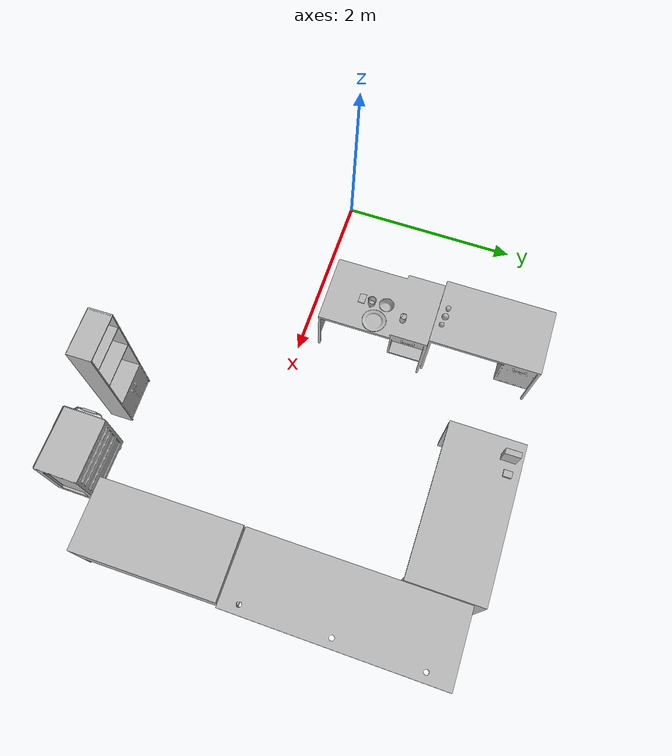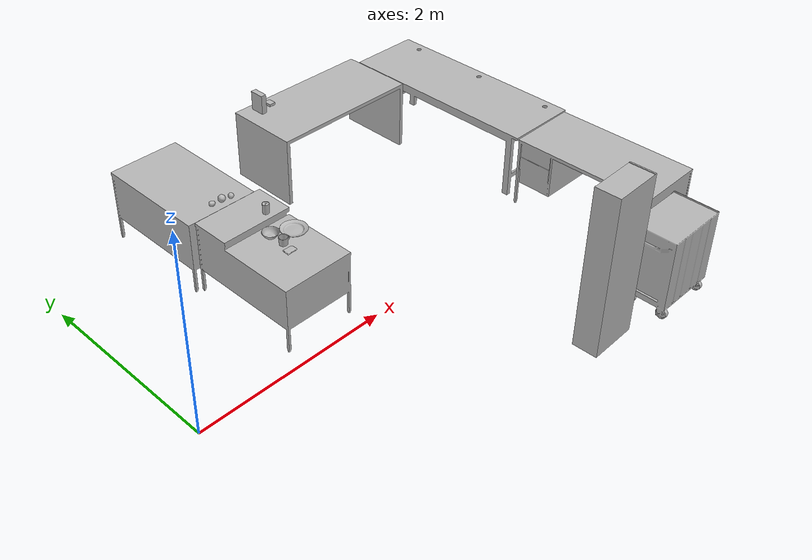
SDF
<sdf version="1.7">
 <world name="default">
  <model name="Table_01">
   <link name="link_0">
    <inertial>
     <mass>14</mass>
     <inertia>
      <ixx>0.166667</ixx>
      <ixy>0</ixy>
      <ixz>0</ixz>
      <iyy>0.166667</iyy>
      <iyz>0</iyz>
      <izz>0.166667</izz>
     </inertia>
    </inertial>
    <visual name="visual">
     <geometry><mesh><uri>model://BioRoboticsLab/meshes/Table_01.dae</uri><scale>1 1 1</scale></mesh></geometry>
     <material><lighting>1</lighting><shader type="pixel"/></material>
    </visual>
    <collision name="collision">
     <geometry><mesh><uri>model://BioRoboticsLab/meshes/Table_01.dae</uri><scale>1 1 1</scale></mesh></geometry>
     <surface>
      <friction>
       <ode><mu>1</mu><mu2>1</mu2><fdir1>0 0 0</fdir1><slip1>0</slip1><slip2>0</slip2></ode>
       <torsional>
        <coefficient>1</coefficient>
        <patch_radius>0</patch_radius>
        <surface_radius>0</surface_radius>
        <use_patch_radius>1</use_patch_radius>
        <ode><slip>0</slip></ode>
       </torsional>
      </friction>
      <bounce><restitution_coefficient>0</restitution_coefficient><threshold>1e+06</threshold></bounce>
      <contact>
       <collide_without_contact>0</collide_without_contact>
       <collide_without_contact_bitmask>1</collide_without_contact_bitmask>
       <collide_bitmask>1</collide_bitmask>
       <ode>
        <soft_cfm>0</soft_cfm>
        <soft_erp>0.2</soft_erp>
        <kp>1e+13</kp>
        <kd>1</kd>
        <max_vel>0.01</max_vel>
        <min_depth>0</min_depth>
       </ode>
       <bullet>
        <split_impulse>1</split_impulse>
        <split_impulse_penetration_threshold>-0.01</split_impulse_penetration_threshold>
        <soft_cfm>0</soft_cfm>
        <soft_erp>0.2</soft_erp>
        <kp>1e+13</kp>
        <kd>1</kd>
       </bullet>
      </contact>
     </surface>
    </collision>
   </link>
   <static>1</static>
   <pose>4.62119 1.38763 0 0 -0 1.57</pose>
  </model>
  <model name="Table_02">
   <link name="link_0">
    <inertial>
     <mass>15</mass>
     <inertia>
      <ixx>0.166667</ixx>
      <ixy>0</ixy>
      <ixz>0</ixz>
      <iyy>0.166667</iyy>
      <iyz>0</iyz>
      <izz>0.166667</izz>
     </inertia>
    </inertial>
    <visual name="visual">
     <geometry><mesh><uri>model://BioRoboticsLab/meshes/Table_02.dae</uri><scale>1 1 1</scale></mesh></geometry>
     <material><lighting>1</lighting><shader type="pixel"/></material>
    </visual>
    <collision name="collision">
     <geometry><mesh><uri>model://BioRoboticsLab/meshes/Table_02.dae</uri><scale>1 1 1</scale></mesh></geometry>
     <surface>
      <friction>
       <ode><mu>1</mu><mu2>1</mu2><fdir1>0 0 0</fdir1><slip1>0</slip1><slip2>0</slip2></ode>
       <torsional>
        <coefficient>1</coefficient>
        <patch_radius>0</patch_radius>
        <surface_radius>0</surface_radius>
        <use_patch_radius>1</use_patch_radius>
        <ode><slip>0</slip></ode>
       </torsional>
      </friction>
      <bounce><restitution_coefficient>0</restitution_coefficient><threshold>1e+06</threshold></bounce>
      <contact>
       <collide_without_contact>0</collide_without_contact>
       <collide_without_contact_bitmask>1</collide_without_contact_bitmask>
       <collide_bitmask>1</collide_bitmask>
       <ode>
        <soft_cfm>0</soft_cfm>
        <soft_erp>0.2</soft_erp>
        <kp>1e+13</kp>
        <kd>1</kd>
        <max_vel>0.01</max_vel>
        <min_depth>0</min_depth>
       </ode>
       <bullet>
        <split_impulse>1</split_impulse>
        <split_impulse_penetration_threshold>-0.01</split_impulse_penetration_threshold>
        <soft_cfm>0</soft_cfm>
        <soft_erp>0.2</soft_erp>
        <kp>1e+13</kp>
        <kd>1</kd>
       </bullet>
      </contact>
     </surface>
    </collision>
   </link>
   <static>1</static>
   <pose>3.3966 2.2962 0 0 0 -3.14159</pose>
  </model>
  <model name="Shelf_02">
   <link name="link_0">
    <inertial>
     <mass>12</mass>
     <inertia>
      <ixx>0.166667</ixx>
      <ixy>0</ixy>
      <ixz>0</ixz>
      <iyy>0.166667</iyy>
      <iyz>0</iyz>
      <izz>0.166667</izz>
     </inertia>
    </inertial>
    <visual name="visual">
     <geometry><mesh><uri>model://BioRoboticsLab/meshes/Shelf_02.dae</uri><scale>1 1 1</scale></mesh></geometry>
     <material><lighting>1</lighting><shader type="pixel"/></material>
    </visual>
    <collision name="collision">
     <geometry><mesh><uri>model://BioRoboticsLab/meshes/Shelf_02.dae</uri><scale>1 1 1</scale></mesh></geometry>
     <surface>
      <friction>
       <ode><mu>1</mu><mu2>1</mu2><fdir1>0 0 0</fdir1><slip1>0</slip1><slip2>0</slip2></ode>
       <torsional>
        <coefficient>1</coefficient>
        <patch_radius>0</patch_radius>
        <surface_radius>0</surface_radius>
        <use_patch_radius>1</use_patch_radius>
        <ode><slip>0</slip></ode>
       </torsional>
      </friction>
      <bounce><restitution_coefficient>0</restitution_coefficient><threshold>1e+06</threshold></bounce>
      <contact>
       <collide_without_contact>0</collide_without_contact>
       <collide_without_contact_bitmask>1</collide_without_contact_bitmask>
       <collide_bitmask>1</collide_bitmask>
       <ode>
        <soft_cfm>0</soft_cfm>
        <soft_erp>0.2</soft_erp>
        <kp>1e+13</kp>
        <kd>1</kd>
        <max_vel>0.01</max_vel>
        <min_depth>0</min_depth>
       </ode>
       <bullet>
        <split_impulse>1</split_impulse>
        <split_impulse_penetration_threshold>-0.01</split_impulse_penetration_threshold>
        <soft_cfm>0</soft_cfm>
        <soft_erp>0.2</soft_erp>
        <kp>1e+13</kp>
        <kd>1</kd>
       </bullet>
      </contact>
     </surface>
    </collision>
   </link>
   <static>1</static>
   <pose>3.1815  -1.58084 0 0 -0 0.019976</pose>
  </model>
  <model name="003_cracker_box">
   <link name="link_0">
    <inertial>
     <mass>1</mass>
     <inertia>
      <ixx>0.166667</ixx>
      <ixy>0</ixy>
      <ixz>0</ixz>
      <iyy>0.166667</iyy>
      <iyz>0</iyz>
      <izz>0.166667</izz>
     </inertia>
    </inertial>
    <visual name="visual">
     <geometry>
      <mesh><uri>model://YCB_virtual/meshes/003_cracker_box.dae</uri><scale>1 1 1</scale></mesh>
     </geometry>
     <material><lighting>1</lighting><shader type="pixel"/></material>
    </visual>
    <collision name="collision">
     <geometry>
      <mesh><uri>model://YCB_virtual/meshes/003_cracker_box.dae</uri><scale>1 1 1</scale></mesh>
     </geometry>
     <surface>
      <friction>
       <ode><mu>1</mu><mu2>1</mu2><fdir1>0 0 0</fdir1><slip1>0</slip1><slip2>0</slip2></ode>
       <torsional>
        <coefficient>1</coefficient>
        <patch_radius>0</patch_radius>
        <surface_radius>0</surface_radius>
        <use_patch_radius>1</use_patch_radius>
        <ode><slip>0</slip></ode>
       </torsional>
      </friction>
      <bounce><restitution_coefficient>0</restitution_coefficient><threshold>1e+06</threshold></bounce>
      <contact>
       <collide_without_contact>0</collide_without_contact>
       <collide_without_contact_bitmask>1</collide_without_contact_bitmask>
       <collide_bitmask>1</collide_bitmask>
       <ode>
        <soft_cfm>0</soft_cfm>
        <soft_erp>0.2</soft_erp>
        <kp>1e+13</kp>
        <kd>1</kd>
        <max_vel>0.01</max_vel>
        <min_depth>0</min_depth>
       </ode>
       <bullet>
        <split_impulse>1</split_impulse>
        <split_impulse_penetration_threshold>-0.01</split_impulse_penetration_threshold>
        <soft_cfm>0</soft_cfm>
        <soft_erp>0.2</soft_erp>
        <kp>1e+13</kp>
        <kd>1</kd>
       </bullet>
      </contact>
     </surface>
    </collision>
   </link>
   <static>0</static>
   <pose>2.7741 2.47991 0.86 2e-06 -1e-06 8.8e-05</pose>
  </model>
  <model name="005_tomato_soup_can">
   <link name="link_0">
    <inertial>
     <mass>0.31</mass>
     <inertia>
      <ixx>0.166667</ixx>
      <ixy>0</ixy>
      <ixz>0</ixz>
      <iyy>0.166667</iyy>
      <iyz>0</iyz>
      <izz>0.166667</izz>
     </inertia>
    </inertial>
    <visual name="visual">
     <geometry>
      <mesh><uri>model://YCB_virtual/meshes/005_tomato_soup_can.dae</uri><scale>1 1 1</scale></mesh>
     </geometry>
     <material><lighting>1</lighting><shader type="pixel"/></material>
    </visual>
    <collision name="collision">
     <geometry>
      <mesh><uri>model://YCB_virtual/meshes/005_tomato_soup_can.dae</uri><scale>1 1 1</scale></mesh>
     </geometry>
     <surface>
      <friction>
       <ode><mu>1</mu><mu2>1</mu2><fdir1>0 0 0</fdir1><slip1>0</slip1><slip2>0</slip2></ode>
       <torsional>
        <coefficient>1</coefficient>
        <patch_radius>0</patch_radius>
        <surface_radius>0</surface_radius>
        <use_patch_radius>1</use_patch_radius>
        <ode><slip>0</slip></ode>
       </torsional>
      </friction>
      <bounce><restitution_coefficient>0</restitution_coefficient><threshold>1e+06</threshold></bounce>
      <contact>
       <collide_without_contact>0</collide_without_contact>
       <collide_without_contact_bitmask>1</collide_without_contact_bitmask>
       <collide_bitmask>1</collide_bitmask>
       <ode>
        <soft_cfm>0</soft_cfm>
        <soft_erp>0.2</soft_erp>
        <kp>1e+13</kp>
        <kd>1</kd>
        <max_vel>0.01</max_vel>
        <min_depth>0</min_depth>
       </ode>
       <bullet>
        <split_impulse>1</split_impulse>
        <split_impulse_penetration_threshold>-0.01</split_impulse_penetration_threshold>
        <soft_cfm>0</soft_cfm>
        <soft_erp>0.2</soft_erp>
        <kp>1e+13</kp>
        <kd>1</kd>
       </bullet>
      </contact>
     </surface>
    </collision>
   </link>
   <static>0</static>
   <pose>1.65812 1.06628 0.813158 5e-06 -1e-06 -1.22185</pose>
  </model>
  <model name="009_gelatin_box">
   <link name="link_0">
    <inertial>
     <mass>0.09</mass>
     <inertia>
      <ixx>0.166667</ixx>
      <ixy>0</ixy>
      <ixz>0</ixz>
      <iyy>0.166667</iyy>
      <iyz>0</iyz>
      <izz>0.166667</izz>
     </inertia>
    </inertial>
    <visual name="visual">
     <geometry>
      <mesh><uri>model://YCB_virtual/meshes/009_gelatin_box.dae</uri><scale>1 1 1</scale></mesh>
     </geometry>
     <material><lighting>1</lighting><shader type="pixel"/></material>
    </visual>
    <collision name="collision">
     <geometry>
      <mesh><uri>model://YCB_virtual/meshes/009_gelatin_box.dae</uri><scale>1 1 1</scale></mesh>
     </geometry>
     <surface>
      <friction>
       <ode><mu>1</mu><mu2>1</mu2><fdir1>0 0 0</fdir1><slip1>0</slip1><slip2>0</slip2></ode>
       <torsional>
        <coefficient>1</coefficient>
        <patch_radius>0</patch_radius>
        <surface_radius>0</surface_radius>
        <use_patch_radius>1</use_patch_radius>
        <ode><slip>0</slip></ode>
       </torsional>
      </friction>
      <bounce><restitution_coefficient>0</restitution_coefficient><threshold>1e+06</threshold></bounce>
      <contact>
       <collide_without_contact>0</collide_without_contact>
       <collide_without_contact_bitmask>1</collide_without_contact_bitmask>
       <collide_bitmask>1</collide_bitmask>
       <ode>
        <soft_cfm>0</soft_cfm>
        <soft_erp>0.2</soft_erp>
        <kp>1e+13</kp>
        <kd>1</kd>
        <max_vel>0.01</max_vel>
        <min_depth>0</min_depth>
       </ode>
       <bullet>
        <split_impulse>1</split_impulse>
        <split_impulse_penetration_threshold>-0.01</split_impulse_penetration_threshold>
        <soft_cfm>0</soft_cfm>
        <soft_erp>0.2</soft_erp>
        <kp>1e+13</kp>
        <kd>1</kd>
       </bullet>
      </contact>
     </surface>
    </collision>
   </link>
   <static>0</static>
   <pose>2.93226 2.50399 0.769202 -0 0.00419 -3.4e-05</pose>
  </model>
  <model name="014_lemon">
   <link name="link_0">
    <inertial>
     <mass>0.1</mass>
     <inertia>
      <ixx>0.166667</ixx>
      <ixy>0</ixy>
      <ixz>0</ixz>
      <iyy>0.166667</iyy>
      <iyz>0</iyz>
      <izz>0.166667</izz>
     </inertia>
    </inertial>
    <visual name="visual">
     <geometry><mesh><uri>model://YCB_virtual/meshes/014_lemon.dae</uri><scale>1 1 1</scale></mesh></geometry>
     <material><lighting>1</lighting><shader type="pixel"/></material>
    </visual>
    <collision name="collision">
     <geometry><mesh><uri>model://YCB_virtual/meshes/014_lemon.dae</uri><scale>1 1 1</scale></mesh></geometry>
     <surface>
      <friction>
       <ode><mu>1</mu><mu2>1</mu2><fdir1>0 0 0</fdir1><slip1>0</slip1><slip2>0</slip2></ode>
       <torsional>
        <coefficient>1</coefficient>
        <patch_radius>0</patch_radius>
        <surface_radius>0</surface_radius>
        <use_patch_radius>1</use_patch_radius>
        <ode><slip>0</slip></ode>
       </torsional>
      </friction>
      <bounce><restitution_coefficient>0</restitution_coefficient><threshold>1e+06</threshold></bounce>
      <contact>
       <collide_without_contact>0</collide_without_contact>
       <collide_without_contact_bitmask>1</collide_without_contact_bitmask>
       <collide_bitmask>1</collide_bitmask>
       <ode>
        <soft_cfm>0</soft_cfm>
        <soft_erp>0.2</soft_erp>
        <kp>1e+13</kp>
        <kd>1</kd>
        <max_vel>0.01</max_vel>
        <min_depth>0</min_depth>
       </ode>
       <bullet>
        <split_impulse>1</split_impulse>
        <split_impulse_penetration_threshold>-0.01</split_impulse_penetration_threshold>
        <soft_cfm>0</soft_cfm>
        <soft_erp>0.2</soft_erp>
        <kp>1e+13</kp>
        <kd>1</kd>
       </bullet>
      </contact>
     </surface>
    </collision>
   </link>
   <static>0</static>
   <pose>1.37886 1.48752 0.78598 0.095457 0.089969 0.003766</pose>
  </model>
  <model name="017_orange">
   <link name="link_0">
    <inertial>
     <mass>0.25</mass>
     <inertia>
      <ixx>0.166667</ixx>
      <ixy>0</ixy>
      <ixz>0</ixz>
      <iyy>0.166667</iyy>
      <iyz>0</iyz>
      <izz>0.166667</izz>
     </inertia>
    </inertial>
    <visual name="visual">
     <geometry><mesh><uri>model://YCB_virtual/meshes/017_orange.dae</uri><scale>1 1 1</scale></mesh></geometry>
     <material><lighting>1</lighting><shader type="pixel"/></material>
    </visual>
    <collision name="collision">
     <geometry><mesh><uri>model://YCB_virtual/meshes/017_orange.dae</uri><scale>1 1 1</scale></mesh></geometry>
     <surface>
      <friction>
       <ode><mu>1</mu><mu2>1</mu2><fdir1>0 0 0</fdir1><slip1>0</slip1><slip2>0</slip2></ode>
       <torsional>
        <coefficient>1</coefficient>
        <patch_radius>0</patch_radius>
        <surface_radius>0</surface_radius>
        <use_patch_radius>1</use_patch_radius>
        <ode><slip>0</slip></ode>
       </torsional>
      </friction>
      <bounce><restitution_coefficient>0</restitution_coefficient><threshold>1e+06</threshold></bounce>
      <contact>
       <collide_without_contact>0</collide_without_contact>
       <collide_without_contact_bitmask>1</collide_without_contact_bitmask>
       <collide_bitmask>1</collide_bitmask>
       <ode>
        <soft_cfm>0</soft_cfm>
        <soft_erp>0.2</soft_erp>
        <kp>1e+13</kp>
        <kd>1</kd>
        <max_vel>0.01</max_vel>
        <min_depth>0</min_depth>
       </ode>
       <bullet>
        <split_impulse>1</split_impulse>
        <split_impulse_penetration_threshold>-0.01</split_impulse_penetration_threshold>
        <soft_cfm>0</soft_cfm>
        <soft_erp>0.2</soft_erp>
        <kp>1e+13</kp>
        <kd>1</kd>
       </bullet>
      </contact>
     </surface>
    </collision>
   </link>
   <static>0</static>
   <pose>1.48638 1.48128 0.793781 0.006122 0.022557 -3.4e-05</pose>
  </model>
  <model name="018_plum">
   <link name="link_0">
    <inertial>
     <mass>0.08</mass>
     <inertia>
      <ixx>0.166667</ixx>
      <ixy>0</ixy>
      <ixz>0</ixz>
      <iyy>0.166667</iyy>
      <iyz>0</iyz>
      <izz>0.166667</izz>
     </inertia>
    </inertial>
    <visual name="visual">
     <geometry><mesh><uri>model://YCB_virtual/meshes/018_plum.dae</uri><scale>1 1 1</scale></mesh></geometry>
     <material><lighting>1</lighting><shader type="pixel"/></material>
    </visual>
    <collision name="collision">
     <geometry><mesh><uri>model://YCB_virtual/meshes/018_plum.dae</uri><scale>1 1 1</scale></mesh></geometry>
     <surface>
      <friction>
       <ode><mu>1</mu><mu2>1</mu2><fdir1>0 0 0</fdir1><slip1>0</slip1><slip2>0</slip2></ode>
       <torsional>
        <coefficient>1</coefficient>
        <patch_radius>0</patch_radius>
        <surface_radius>0</surface_radius>
        <use_patch_radius>1</use_patch_radius>
        <ode><slip>0</slip></ode>
       </torsional>
      </friction>
      <bounce><restitution_coefficient>0</restitution_coefficient><threshold>1e+06</threshold></bounce>
      <contact>
       <collide_without_contact>0</collide_without_contact>
       <collide_without_contact_bitmask>1</collide_without_contact_bitmask>
       <collide_bitmask>1</collide_bitmask>
       <ode>
        <soft_cfm>0</soft_cfm>
        <soft_erp>0.2</soft_erp>
        <kp>1e+13</kp>
        <kd>1</kd>
        <max_vel>0.01</max_vel>
        <min_depth>0</min_depth>
       </ode>
       <bullet>
        <split_impulse>1</split_impulse>
        <split_impulse_penetration_threshold>-0.01</split_impulse_penetration_threshold>
        <soft_cfm>0</soft_cfm>
        <soft_erp>0.2</soft_erp>
        <kp>1e+13</kp>
        <kd>1</kd>
       </bullet>
      </contact>
     </surface>
    </collision>
   </link>
   <static>0</static>
   <pose>1.58296 1.46964 0.783689 0.00579 -0.027533 7.1e-05</pose>
  </model>
  <model name="024_bowl">
   <link name="link_0">
    <inertial>
     <mass>0.4</mass>
     <inertia>
      <ixx>0.166667</ixx>
      <ixy>0</ixy>
      <ixz>0</ixz>
      <iyy>0.166667</iyy>
      <iyz>0</iyz>
      <izz>0.166667</izz>
     </inertia>
    </inertial>
    <visual name="visual">
     <geometry><mesh><uri>model://YCB_virtual/meshes/024_bowl.dae</uri><scale>1 1 1</scale></mesh></geometry>
     <material><lighting>1</lighting><shader type="pixel"/></material>
    </visual>
    <collision name="collision">
     <geometry><mesh><uri>model://YCB_virtual/meshes/024_bowl.dae</uri><scale>1 1 1</scale></mesh></geometry>
     <surface>
      <friction>
       <ode><mu>1</mu><mu2>1</mu2><fdir1>0 0 0</fdir1><slip1>0</slip1><slip2>0</slip2></ode>
       <torsional>
        <coefficient>1</coefficient>
        <patch_radius>0</patch_radius>
        <surface_radius>0</surface_radius>
        <use_patch_radius>1</use_patch_radius>
        <ode><slip>0</slip></ode>
       </torsional>
      </friction>
      <bounce><restitution_coefficient>0</restitution_coefficient><threshold>1e+06</threshold></bounce>
      <contact>
       <collide_without_contact>0</collide_without_contact>
       <collide_without_contact_bitmask>1</collide_without_contact_bitmask>
       <collide_bitmask>1</collide_bitmask>
       <ode>
        <soft_cfm>0</soft_cfm>
        <soft_erp>0.2</soft_erp>
        <kp>1e+13</kp>
        <kd>1</kd>
        <max_vel>0.01</max_vel>
        <min_depth>0</min_depth>
       </ode>
       <bullet>
        <split_impulse>1</split_impulse>
        <split_impulse_penetration_threshold>-0.01</split_impulse_penetration_threshold>
        <soft_cfm>0</soft_cfm>
        <soft_erp>0.2</soft_erp>
        <kp>1e+13</kp>
        <kd>1</kd>
       </bullet>
      </contact>
     </surface>
    </collision>
   </link>
   <static>0</static>
   <pose>1.52195 0.84998 0.704982 1e-06 -1e-06 -0.000366</pose>
  </model>
  <model name="025_mug">
   <link name="link_0">
    <inertial>
     <mass>0.3</mass>
     <inertia>
      <ixx>0.166667</ixx>
      <ixy>0</ixy>
      <ixz>0</ixz>
      <iyy>0.166667</iyy>
      <iyz>0</iyz>
      <izz>0.166667</izz>
     </inertia>
    </inertial>
    <visual name="visual">
     <geometry><mesh><uri>model://YCB_virtual/meshes/025_mug.dae</uri><scale>1 1 1</scale></mesh></geometry>
     <material><lighting>1</lighting><shader type="pixel"/></material>
    </visual>
    <collision name="collision">
     <geometry><mesh><uri>model://YCB_virtual/meshes/025_mug.dae</uri><scale>1 1 1</scale></mesh></geometry>
     <surface>
      <friction>
       <ode><mu>1</mu><mu2>1</mu2><fdir1>0 0 0</fdir1><slip1>0</slip1><slip2>0</slip2></ode>
       <torsional>
        <coefficient>1</coefficient>
        <patch_radius>0</patch_radius>
        <surface_radius>0</surface_radius>
        <use_patch_radius>1</use_patch_radius>
        <ode><slip>0</slip></ode>
       </torsional>
      </friction>
      <bounce><restitution_coefficient>0</restitution_coefficient><threshold>1e+06</threshold></bounce>
      <contact>
       <collide_without_contact>0</collide_without_contact>
       <collide_without_contact_bitmask>1</collide_without_contact_bitmask>
       <collide_bitmask>1</collide_bitmask>
       <ode>
        <soft_cfm>0</soft_cfm>
        <soft_erp>0.2</soft_erp>
        <kp>1e+13</kp>
        <kd>1</kd>
        <max_vel>0.01</max_vel>
        <min_depth>0</min_depth>
       </ode>
       <bullet>
        <split_impulse>1</split_impulse>
        <split_impulse_penetration_threshold>-0.01</split_impulse_penetration_threshold>
        <soft_cfm>0</soft_cfm>
        <soft_erp>0.2</soft_erp>
        <kp>1e+13</kp>
        <kd>1</kd>
       </bullet>
      </contact>
     </surface>
    </collision>
   </link>
   <static>0</static>
   <pose>1.52915 0.687979 0.71727 0 -2e-06 0.000215</pose>
  </model>
  <model name="026_sponge">
   <link name="link_0">
    <inertial>
     <mass>0.01</mass>
     <inertia>
      <ixx>0.166667</ixx>
      <ixy>0</ixy>
      <ixz>0</ixz>
      <iyy>0.166667</iyy>
      <iyz>0</iyz>
      <izz>0.166667</izz>
     </inertia>
    </inertial>
    <visual name="visual">
     <geometry><mesh><uri>model://YCB_virtual/meshes/026_sponge.dae</uri><scale>1 1 1</scale></mesh></geometry>
     <material><lighting>1</lighting><shader type="pixel"/></material>
    </visual>
    <collision name="collision">
     <geometry><mesh><uri>model://YCB_virtual/meshes/026_sponge.dae</uri><scale>1 1 1</scale></mesh></geometry>
     <surface>
      <friction>
       <ode><mu>1</mu><mu2>1</mu2><fdir1>0 0 0</fdir1><slip1>0</slip1><slip2>0</slip2></ode>
       <torsional>
        <coefficient>1</coefficient>
        <patch_radius>0</patch_radius>
        <surface_radius>0</surface_radius>
        <use_patch_radius>1</use_patch_radius>
        <ode><slip>0</slip></ode>
       </torsional>
      </friction>
      <bounce><restitution_coefficient>0</restitution_coefficient><threshold>1e+06</threshold></bounce>
      <contact>
       <collide_without_contact>0</collide_without_contact>
       <collide_without_contact_bitmask>1</collide_without_contact_bitmask>
       <collide_bitmask>1</collide_bitmask>
       <ode>
        <soft_cfm>0</soft_cfm>
        <soft_erp>0.2</soft_erp>
        <kp>1e+13</kp>
        <kd>1</kd>
        <max_vel>0.01</max_vel>
        <min_depth>0</min_depth>
       </ode>
       <bullet>
        <split_impulse>1</split_impulse>
        <split_impulse_penetration_threshold>-0.01</split_impulse_penetration_threshold>
        <soft_cfm>0</soft_cfm>
        <soft_erp>0.2</soft_erp>
        <kp>1e+13</kp>
        <kd>1</kd>
       </bullet>
      </contact>
     </surface>
    </collision>
   </link>
   <static>0</static>
   <pose>1.50629 0.576854 0.688494 0.009334 0.000884 1.56521</pose>
  </model>
  <model name="029_plate">
   <link name="link_0">
    <inertial>
     <mass>0.25</mass>
     <inertia>
      <ixx>0.166667</ixx>
      <ixy>0</ixy>
      <ixz>0</ixz>
      <iyy>0.166667</iyy>
      <iyz>0</iyz>
      <izz>0.166667</izz>
     </inertia>
    </inertial>
    <visual name="visual">
     <geometry><mesh><uri>model://YCB_virtual/meshes/029_plate.dae</uri><scale>1 1 1</scale></mesh></geometry>
     <material><lighting>1</lighting><shader type="pixel"/></material>
    </visual>
    <collision name="collision">
     <geometry><mesh><uri>model://YCB_virtual/meshes/029_plate.dae</uri><scale>1 1 1</scale></mesh></geometry>
     <surface>
      <friction>
       <ode><mu>1</mu><mu2>1</mu2><fdir1>0 0 0</fdir1><slip1>0</slip1><slip2>0</slip2></ode>
       <torsional>
        <coefficient>1</coefficient>
        <patch_radius>0</patch_radius>
        <surface_radius>0</surface_radius>
        <use_patch_radius>1</use_patch_radius>
        <ode><slip>0</slip></ode>
       </torsional>
      </friction>
      <bounce><restitution_coefficient>0</restitution_coefficient><threshold>1e+06</threshold></bounce>
      <contact>
       <collide_without_contact>0</collide_without_contact>
       <collide_without_contact_bitmask>1</collide_without_contact_bitmask>
       <collide_bitmask>1</collide_bitmask>
       <ode>
        <soft_cfm>0</soft_cfm>
        <soft_erp>0.2</soft_erp>
        <kp>1e+13</kp>
        <kd>1</kd>
        <max_vel>0.01</max_vel>
        <min_depth>0</min_depth>
       </ode>
       <bullet>
        <split_impulse>1</split_impulse>
        <split_impulse_penetration_threshold>-0.01</split_impulse_penetration_threshold>
        <soft_cfm>0</soft_cfm>
        <soft_erp>0.2</soft_erp>
        <kp>1e+13</kp>
        <kd>1</kd>
       </bullet>
      </contact>
     </surface>
    </collision>
   </link>
   <static>0</static>
   <pose>1.72819 0.775064 0.690992 1e-06 3e-06 -3.6e-05</pose>
  </model>
  <model name="ToolBox_red">
   <link name="link_0">
    <inertial>
     <mass>20</mass>
     <inertia>
      <ixx>0.166667</ixx>
      <ixy>0</ixy>
      <ixz>0</ixz>
      <iyy>0.166667</iyy>
      <iyz>0</iyz>
      <izz>0.166667</izz>
     </inertia>
     <pose>0 0 0.5 0 -0 0</pose>
    </inertial>
    <visual name="visual">
     <geometry><mesh><uri>model://BioRoboticsLab/meshes/ToolBox_red.dae</uri><scale>1 1 1</scale></mesh></geometry>
     <material><lighting>1</lighting><shader type="pixel"/></material>
    </visual>
    <collision name="collision">
     <geometry><mesh><uri>model://BioRoboticsLab/meshes/ToolBox_red.dae</uri><scale>1 1 1</scale></mesh></geometry>
     <surface>
      <friction>
       <ode><mu>1</mu><mu2>1</mu2><fdir1>0 0 0</fdir1><slip1>0</slip1><slip2>0</slip2></ode>
       <torsional>
        <coefficient>1</coefficient>
        <patch_radius>0</patch_radius>
        <surface_radius>0</surface_radius>
        <use_patch_radius>1</use_patch_radius>
        <ode><slip>0</slip></ode>
       </torsional>
      </friction>
      <bounce><restitution_coefficient>0</restitution_coefficient><threshold>1e+06</threshold></bounce>
      <contact>
       <collide_without_contact>0</collide_without_contact>
       <collide_without_contact_bitmask>1</collide_without_contact_bitmask>
       <collide_bitmask>1</collide_bitmask>
       <ode>
        <soft_cfm>0</soft_cfm>
        <soft_erp>0.2</soft_erp>
        <kp>1e+13</kp>
        <kd>1</kd>
        <max_vel>0.01</max_vel>
        <min_depth>0</min_depth>
       </ode>
       <bullet>
        <split_impulse>1</split_impulse>
        <split_impulse_penetration_threshold>-0.01</split_impulse_penetration_threshold>
        <soft_cfm>0</soft_cfm>
        <soft_erp>0.2</soft_erp>
        <kp>1e+13</kp>
        <kd>1</kd>
       </bullet>
      </contact>
     </surface>
    </collision>
   </link>
   <static>0</static>
   <pose>4.050676 -1.65909 -0.000651 2.1e-05 -0 0</pose>
  </model>
  <model name="Desk_01">
   <link name="link_0">
    <inertial>
     <mass>35</mass>
     <inertia>
      <ixx>0.166667</ixx>
      <ixy>0</ixy>
      <ixz>0</ixz>
      <iyy>0.166667</iyy>
      <iyz>0</iyz>
      <izz>0.166667</izz>
     </inertia>
    </inertial>
    <visual name="visual">
     <geometry><mesh><uri>model://BioRoboticsLab/meshes/Desk_01.dae</uri><scale>1 1 1</scale></mesh></geometry>
     <material><lighting>1</lighting><shader type="pixel"/></material>
    </visual>
    <collision name="collision">
     <geometry><mesh><uri>model://BioRoboticsLab/meshes/Desk_01.dae</uri><scale>1 1 1</scale></mesh></geometry>
     <surface>
      <friction>
       <ode><mu>1</mu><mu2>1</mu2><fdir1>0 0 0</fdir1><slip1>0</slip1><slip2>0</slip2></ode>
       <torsional>
        <coefficient>1</coefficient>
        <patch_radius>0</patch_radius>
        <surface_radius>0</surface_radius>
        <use_patch_radius>1</use_patch_radius>
        <ode><slip>0</slip></ode>
       </torsional>
      </friction>
      <bounce><restitution_coefficient>0</restitution_coefficient><threshold>1e+06</threshold></bounce>
      <contact>
       <collide_without_contact>0</collide_without_contact>
       <collide_without_contact_bitmask>1</collide_without_contact_bitmask>
       <collide_bitmask>1</collide_bitmask>
       <ode>
        <soft_cfm>0</soft_cfm>
        <soft_erp>0.2</soft_erp>
        <kp>1e+13</kp>
        <kd>1</kd>
        <max_vel>0.01</max_vel>
        <min_depth>0</min_depth>
       </ode>
       <bullet>
        <split_impulse>1</split_impulse>
        <split_impulse_penetration_threshold>-0.01</split_impulse_penetration_threshold>
        <soft_cfm>0</soft_cfm>
        <soft_erp>0.2</soft_erp>
        <kp>1e+13</kp>
        <kd>1</kd>
       </bullet>
      </contact>
     </surface>
    </collision>
   </link>
   <static>1</static>
   <pose>4.60448 -0.497618 0 0 -0 1.57832</pose>
  </model>
  <model name="Desk_02">
   <link name="link_0">
    <inertial>
     <mass>19</mass>
     <inertia>
      <ixx>0.166667</ixx>
      <ixy>0</ixy>
      <ixz>0</ixz>
      <iyy>0.166667</iyy>
      <iyz>0</iyz>
      <izz>0.166667</izz>
     </inertia>
    </inertial>
    <visual name="visual">
     <geometry><mesh><uri>model://BioRoboticsLab/meshes/Desk_02.dae</uri><scale>1 1 1</scale></mesh></geometry>
     <material><lighting>1</lighting><shader type="pixel"/></material>
    </visual>
    <collision name="collision">
     <geometry><mesh><uri>model://BioRoboticsLab/meshes/Desk_02.dae</uri><scale>1 1 1</scale></mesh></geometry>
     <surface>
      <friction>
       <ode><mu>1</mu><mu2>1</mu2><fdir1>0 0 0</fdir1><slip1>0</slip1><slip2>0</slip2></ode>
       <torsional>
        <coefficient>1</coefficient>
        <patch_radius>0</patch_radius>
        <surface_radius>0</surface_radius>
        <use_patch_radius>1</use_patch_radius>
        <ode><slip>0</slip></ode>
       </torsional>
      </friction>
      <bounce><restitution_coefficient>0</restitution_coefficient><threshold>1e+06</threshold></bounce>
      <contact>
       <collide_without_contact>0</collide_without_contact>
       <collide_without_contact_bitmask>1</collide_without_contact_bitmask>
       <collide_bitmask>1</collide_bitmask>
       <ode>
        <soft_cfm>0</soft_cfm>
        <soft_erp>0.2</soft_erp>
        <kp>1e+13</kp>
        <kd>1</kd>
        <max_vel>0.01</max_vel>
        <min_depth>0</min_depth>
       </ode>
       <bullet>
        <split_impulse>1</split_impulse>
        <split_impulse_penetration_threshold>-0.01</split_impulse_penetration_threshold>
        <soft_cfm>0</soft_cfm>
        <soft_erp>0.2</soft_erp>
        <kp>1e+13</kp>
        <kd>1</kd>
       </bullet>
      </contact>
     </surface>
    </collision>
   </link>
   <static>1</static>
   <pose>1.4839 0.938157 0 0 0 -1.56403</pose>
  </model>
  <model name="Desk_03">
   <link name="link_0">
    <inertial>
     <mass>25</mass>
     <inertia>
      <ixx>0.166667</ixx>
      <ixy>0</ixy>
      <ixz>0</ixz>
      <iyy>0.166667</iyy>
      <iyz>0</iyz>
      <izz>0.166667</izz>
     </inertia>
    </inertial>
    <visual name="visual">
     <geometry><mesh><uri>model://BioRoboticsLab/meshes/Desk_03.dae</uri><scale>1 1 1</scale></mesh></geometry>
     <material><lighting>1</lighting><shader type="pixel"/></material>
    </visual>
    <collision name="collision">
     <geometry><mesh><uri>model://BioRoboticsLab/meshes/Desk_03.dae</uri><scale>1 1 1</scale></mesh></geometry>
     <surface>
      <friction>
       <ode><mu>1</mu><mu2>1</mu2><fdir1>0 0 0</fdir1><slip1>0</slip1><slip2>0</slip2></ode>
       <torsional>
        <coefficient>1</coefficient>
        <patch_radius>0</patch_radius>
        <surface_radius>0</surface_radius>
        <use_patch_radius>1</use_patch_radius>
        <ode><slip>0</slip></ode>
       </torsional>
      </friction>
      <bounce><restitution_coefficient>0</restitution_coefficient><threshold>1e+06</threshold></bounce>
      <contact>
       <collide_without_contact>0</collide_without_contact>
       <collide_without_contact_bitmask>1</collide_without_contact_bitmask>
       <collide_bitmask>1</collide_bitmask>
       <ode>
        <soft_cfm>0</soft_cfm>
        <soft_erp>0.2</soft_erp>
        <kp>1e+13</kp>
        <kd>1</kd>
        <max_vel>0.01</max_vel>
        <min_depth>0</min_depth>
       </ode>
       <bullet>
        <split_impulse>1</split_impulse>
        <split_impulse_penetration_threshold>-0.01</split_impulse_penetration_threshold>
        <soft_cfm>0</soft_cfm>
        <soft_erp>0.2</soft_erp>
        <kp>1e+13</kp>
        <kd>1</kd>
       </bullet>
      </contact>
     </surface>
    </collision>
   </link>
   <static>1</static>
   <pose>1.415598 1.99255 0 0 0 -1.56804</pose>
  </model>
 </world>
</sdf>
